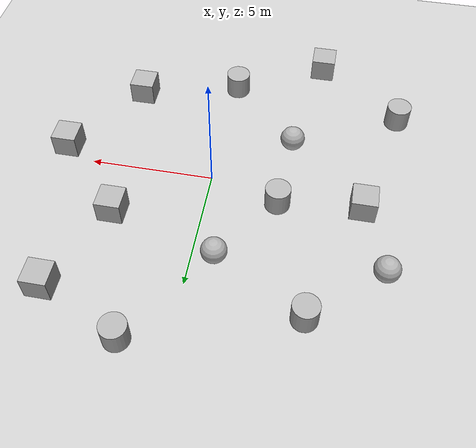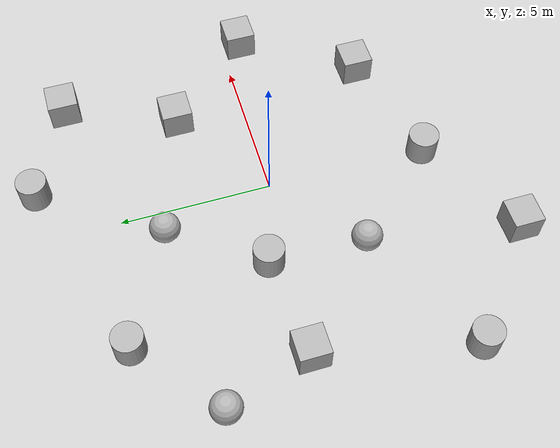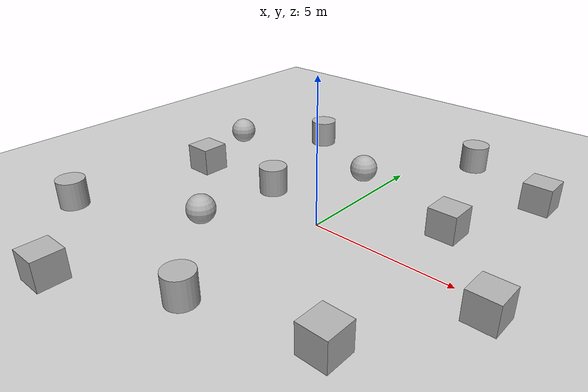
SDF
<sdf version='1.9'>
  <world name='my_world'>
    <physics name='1ms' type='ignored'>
      <max_step_size>0.001</max_step_size>
      <real_time_factor>1</real_time_factor>
      <real_time_update_rate>1000</real_time_update_rate>
    </physics>
    <plugin name='gz::sim::systems::Physics' filename='gz-sim-physics-system'/>
    <plugin name='gz::sim::systems::UserCommands' filename='gz-sim-user-commands-system'/>
    <plugin name='gz::sim::systems::SceneBroadcaster' filename='gz-sim-scene-broadcaster-system'/>
    <plugin name='gz::sim::systems::Imu' filename='gz-sim-imu-system'/>
    <plugin name='gz::sim::systems::Sensors' filename='gz-sim-sensors-system'>
      <render_engine>ogre2</render_engine>
    </plugin>
    <plugin name='gz::sim::systems::Contact' filename='gz-sim-contact-system'/>
    <gravity>0 0 -9.8</gravity>
    <magnetic_field>6e-06 2.3e-05 -4.2e-05</magnetic_field>
    <atmosphere type='adiabatic'/>
    <scene>
      <ambient>0.4 0.4 0.4 1</ambient>
      <background>0.7 0.7 0.7 1</background>
      <shadows>true</shadows>
    </scene>

    <!-- Ground Plane -->
    <model name='ground_plane'>
      <static>true</static>
      <link name='link'>
        <collision name='collision'>
          <geometry>
            <plane>
              <normal>0 0 1</normal>
              <size>100 100</size>
            </plane>
          </geometry>
          <surface>
            <friction>
              <ode>
                <mu>100</mu>
                <mu2>50</mu2>
              </ode>
            </friction>
            <bounce/>
            <contact/>
          </surface>
        </collision>
        <visual name='visual'>
          <cast_shadows>false</cast_shadows>
          <geometry>
            <plane>
              <normal>0 0 1</normal>
              <size>100 100</size>
            </plane>
          </geometry>
          <material>
            <ambient>0.8 0.8 0.8 1</ambient>
            <diffuse>0.8 0.8 0.8 1</diffuse>
            <specular>0.8 0.8 0.8 1</specular>
          </material>
        </visual>
        <pose>0 0 0 0 0 0</pose>
        <inertial>
          <pose>0 0 0 0 0 0</pose>
          <mass>1</mass>
          <inertia>
            <ixx>1</ixx><ixy>0</ixy><ixz>0</ixz>
            <iyy>1</iyy><iyz>0</iyz><izz>1</izz>
          </inertia>
        </inertial>
        <enable_wind>false</enable_wind>
      </link>
      <pose>0 0 0 0 0 0</pose>
      <self_collide>false</self_collide>
    </model>

    <!-- Robot: spawned via ros_gz_sim create node using robot_description topic -->

    <!-- Boxes -->
    <model name='box'>
      <pose>3.43782 2.34559 0.5 0 0 0</pose>
      <link name='box_link'>
        <inertial>
          <inertia><ixx>0.16666</ixx><ixy>0</ixy><ixz>0</ixz><iyy>0.16666</iyy><iyz>0</iyz><izz>0.16666</izz></inertia>
          <mass>1</mass><pose>0 0 0 0 0 0</pose>
        </inertial>
        <collision name='box_collision'>
          <geometry><box><size>1 1 1</size></box></geometry>
          <surface><friction><ode/></friction><bounce/><contact/></surface>
        </collision>
        <visual name='box_visual'>
          <geometry><box><size>1 1 1</size></box></geometry>
          <material><ambient>0.3 0.3 0.3 1</ambient><diffuse>0.7 0.7 0.7 1</diffuse><specular>1 1 1 1</specular></material>
        </visual>
        <pose>0 0 0 0 0 0</pose>
        <enable_wind>false</enable_wind>
      </link>
      <static>false</static>
      <self_collide>false</self_collide>
    </model>

    <model name='box_0'>
      <pose>3.92604 -4.27886 0.5 0 0 0</pose>
      <link name='box_link'>
        <inertial>
          <inertia><ixx>0.16666</ixx><ixy>0</ixy><ixz>0</ixz><iyy>0.16666</iyy><iyz>0</iyz><izz>0.16666</izz></inertia>
          <mass>1</mass><pose>0 0 0 0 0 0</pose>
        </inertial>
        <collision name='box_collision'>
          <geometry><box><size>1 1 1</size></box></geometry>
          <surface><friction><ode/></friction><bounce/><contact/></surface>
        </collision>
        <visual name='box_visual'>
          <geometry><box><size>1 1 1</size></box></geometry>
          <material><ambient>0.3 0.3 0.3 1</ambient><diffuse>0.7 0.7 0.7 1</diffuse><specular>1 1 1 1</specular></material>
        </visual>
        <pose>0 0 0 0 0 0</pose>
        <enable_wind>false</enable_wind>
      </link>
      <static>false</static>
      <self_collide>false</self_collide>
    </model>

    <model name='box_1'>
      <pose>-6.09958 0.537561 0.5 0 0 0</pose>
      <link name='box_link'>
        <inertial>
          <inertia><ixx>0.16666</ixx><ixy>0</ixy><ixz>0</ixz><iyy>0.16666</iyy><iyz>0</iyz><izz>0.16666</izz></inertia>
          <mass>1</mass><pose>0 0 0 0 0 0</pose>
        </inertial>
        <collision name='box_collision'>
          <geometry><box><size>1 1 1</size></box></geometry>
          <surface><friction><ode/></friction><bounce/><contact/></surface>
        </collision>
        <visual name='box_visual'>
          <geometry><box><size>1 1 1</size></box></geometry>
          <material><ambient>0.3 0.3 0.3 1</ambient><diffuse>0.7 0.7 0.7 1</diffuse><specular>1 1 1 1</specular></material>
        </visual>
        <pose>0 0 0 0 0 0</pose>
        <enable_wind>false</enable_wind>
      </link>
      <static>false</static>
      <self_collide>false</self_collide>
    </model>

    <model name='box_2'>
      <pose>6.22669 -0.634333 0.5 0 0 0</pose>
      <link name='box_link'>
        <inertial>
          <inertia><ixx>0.16666</ixx><ixy>0</ixy><ixz>0</ixz><iyy>0.16666</iyy><iyz>0</iyz><izz>0.16666</izz></inertia>
          <mass>1</mass><pose>0 0 0 0 0 0</pose>
        </inertial>
        <collision name='box_collision'>
          <geometry><box><size>1 1 1</size></box></geometry>
          <surface><friction><ode/></friction><bounce/><contact/></surface>
        </collision>
        <visual name='box_visual'>
          <geometry><box><size>1 1 1</size></box></geometry>
          <material><ambient>0.3 0.3 0.3 1</ambient><diffuse>0.7 0.7 0.7 1</diffuse><specular>1 1 1 1</specular></material>
        </visual>
        <pose>0 0 0 0 0 0</pose>
        <enable_wind>false</enable_wind>
      </link>
      <static>false</static>
      <self_collide>false</self_collide>
    </model>

    <model name='box_3'>
      <pose>4.94538 5.97896 0.5 0 0 0</pose>
      <link name='box_link'>
        <inertial>
          <inertia><ixx>0.16666</ixx><ixy>0</ixy><ixz>0</ixz><iyy>0.16666</iyy><iyz>0</iyz><izz>0.16666</izz></inertia>
          <mass>1</mass><pose>0 0 0 0 0 0</pose>
        </inertial>
        <collision name='box_collision'>
          <geometry><box><size>1 1 1</size></box></geometry>
          <surface><friction><ode/></friction><bounce/><contact/></surface>
        </collision>
        <visual name='box_visual'>
          <geometry><box><size>1 1 1</size></box></geometry>
          <material><ambient>0.3 0.3 0.3 1</ambient><diffuse>0.7 0.7 0.7 1</diffuse><specular>1 1 1 1</specular></material>
        </visual>
        <pose>0 0 0 0 0 0</pose>
        <enable_wind>false</enable_wind>
      </link>
      <static>false</static>
      <self_collide>false</self_collide>
    </model>

    <model name='box_4'>
      <pose>-3.78368 -7.24202 0.5 0 0 0</pose>
      <link name='box_link'>
        <inertial>
          <inertia><ixx>0.16666</ixx><ixy>0</ixy><ixz>0</ixz><iyy>0.16666</iyy><iyz>0</iyz><izz>0.16666</izz></inertia>
          <mass>1</mass><pose>0 0 0 0 0 0</pose>
        </inertial>
        <collision name='box_collision'>
          <geometry><box><size>1 1 1</size></box></geometry>
          <surface><friction><ode/></friction><bounce/><contact/></surface>
        </collision>
        <visual name='box_visual'>
          <geometry><box><size>1 1 1</size></box></geometry>
          <material><ambient>0.3 0.3 0.3 1</ambient><diffuse>0.7 0.7 0.7 1</diffuse><specular>1 1 1 1</specular></material>
        </visual>
        <pose>0 0 0 0 0 0</pose>
        <enable_wind>false</enable_wind>
      </link>
      <static>false</static>
      <self_collide>false</self_collide>
    </model>

    <!-- Cylinders -->
    <model name='cylinder'>
      <pose>-4.4174 5.61203 0.499999 0 0 0</pose>
      <link name='cylinder_link'>
        <inertial>
          <inertia><ixx>0.1458</ixx><ixy>0</ixy><ixz>0</ixz><iyy>0.1458</iyy><iyz>0</iyz><izz>0.125</izz></inertia>
          <mass>1</mass><pose>0 0 0 0 0 0</pose>
        </inertial>
        <collision name='cylinder_collision'>
          <geometry><cylinder><radius>0.5</radius><length>1</length></cylinder></geometry>
          <surface><friction><ode/></friction><bounce/><contact/></surface>
        </collision>
        <visual name='cylinder_visual'>
          <geometry><cylinder><radius>0.5</radius><length>1</length></cylinder></geometry>
          <material><ambient>0.3 0.3 0.3 1</ambient><diffuse>0.7 0.7 0.7 1</diffuse><specular>1 1 1 1</specular></material>
        </visual>
        <pose>0 0 0 0 0 0</pose>
        <enable_wind>false</enable_wind>
      </link>
      <static>false</static>
      <self_collide>false</self_collide>
    </model>

    <model name='cylinder_0'>
      <pose>1.74531 7.47799 0.499999 0 0 0</pose>
      <link name='cylinder_link'>
        <inertial>
          <inertia><ixx>0.1458</ixx><ixy>0</ixy><ixz>0</ixz><iyy>0.1458</iyy><iyz>0</iyz><izz>0.125</izz></inertia>
          <mass>1</mass><pose>0 0 0 0 0 0</pose>
        </inertial>
        <collision name='cylinder_collision'>
          <geometry><cylinder><radius>0.5</radius><length>1</length></cylinder></geometry>
          <surface><friction><ode/></friction><bounce/><contact/></surface>
        </collision>
        <visual name='cylinder_visual'>
          <geometry><cylinder><radius>0.5</radius><length>1</length></cylinder></geometry>
          <material><ambient>0.3 0.3 0.3 1</ambient><diffuse>0.7 0.7 0.7 1</diffuse><specular>1 1 1 1</specular></material>
        </visual>
        <pose>0 0 0 0 0 0</pose>
        <enable_wind>false</enable_wind>
      </link>
      <static>false</static>
      <self_collide>false</self_collide>
    </model>

    <model name='cylinder_1'>
      <pose>-0.132806 -5.3249 0.499999 0 0 0</pose>
      <link name='cylinder_link'>
        <inertial>
          <inertia><ixx>0.1458</ixx><ixy>0</ixy><ixz>0</ixz><iyy>0.1458</iyy><iyz>0</iyz><izz>0.125</izz></inertia>
          <mass>1</mass><pose>0 0 0 0 0 0</pose>
        </inertial>
        <collision name='cylinder_collision'>
          <geometry><cylinder><radius>0.5</radius><length>1</length></cylinder></geometry>
          <surface><friction><ode/></friction><bounce/><contact/></surface>
        </collision>
        <visual name='cylinder_visual'>
          <geometry><cylinder><radius>0.5</radius><length>1</length></cylinder></geometry>
          <material><ambient>0.3 0.3 0.3 1</ambient><diffuse>0.7 0.7 0.7 1</diffuse><specular>1 1 1 1</specular></material>
        </visual>
        <pose>0 0 0 0 0 0</pose>
        <enable_wind>false</enable_wind>
      </link>
      <static>false</static>
      <self_collide>false</self_collide>
    </model>

    <model name='cylinder_2'>
      <pose>-7.24042 -4.5203 0.499999 0 0 0</pose>
      <link name='cylinder_link'>
        <inertial>
          <inertia><ixx>0.1458</ixx><ixy>0</ixy><ixz>0</ixz><iyy>0.1458</iyy><iyz>0</iyz><izz>0.125</izz></inertia>
          <mass>1</mass><pose>0 0 0 0 0 0</pose>
        </inertial>
        <collision name='cylinder_collision'>
          <geometry><cylinder><radius>0.5</radius><length>1</length></cylinder></geometry>
          <surface><friction><ode/></friction><bounce/><contact/></surface>
        </collision>
        <visual name='cylinder_visual'>
          <geometry><cylinder><radius>0.5</radius><length>1</length></cylinder></geometry>
          <material><ambient>0.3 0.3 0.3 1</ambient><diffuse>0.7 0.7 0.7 1</diffuse><specular>1 1 1 1</specular></material>
        </visual>
        <pose>0 0 0 0 0 0</pose>
        <enable_wind>false</enable_wind>
      </link>
      <static>false</static>
      <self_collide>false</self_collide>
    </model>

    <model name='cylinder_3'>
      <pose>-2.78874 0.837419 0.499999 0 0 0</pose>
      <link name='cylinder_link'>
        <inertial>
          <inertia><ixx>0.1458</ixx><ixy>0</ixy><ixz>0</ixz><iyy>0.1458</iyy><iyz>0</iyz><izz>0.125</izz></inertia>
          <mass>1</mass><pose>0 0 0 0 0 0</pose>
        </inertial>
        <collision name='cylinder_collision'>
          <geometry><cylinder><radius>0.5</radius><length>1</length></cylinder></geometry>
          <surface><friction><ode/></friction><bounce/><contact/></surface>
        </collision>
        <visual name='cylinder_visual'>
          <geometry><cylinder><radius>0.5</radius><length>1</length></cylinder></geometry>
          <material><ambient>0.3 0.3 0.3 1</ambient><diffuse>0.7 0.7 0.7 1</diffuse><specular>1 1 1 1</specular></material>
        </visual>
        <pose>0 0 0 0 0 0</pose>
        <enable_wind>false</enable_wind>
      </link>
      <static>false</static>
      <self_collide>false</self_collide>
    </model>

    <!-- Spheres -->
    <model name='sphere'>
      <pose>-0.851795 3.70456 0.5 0 0 0</pose>
      <link name='sphere_link'>
        <inertial>
          <inertia><ixx>0.1</ixx><ixy>0</ixy><ixz>0</ixz><iyy>0.1</iyy><iyz>0</iyz><izz>0.1</izz></inertia>
          <mass>1</mass><pose>0 0 0 0 0 0</pose>
        </inertial>
        <collision name='sphere_collision'>
          <geometry><sphere><radius>0.5</radius></sphere></geometry>
          <surface><friction><ode/></friction><bounce/><contact/></surface>
        </collision>
        <visual name='sphere_visual'>
          <geometry><sphere><radius>0.5</radius></sphere></geometry>
          <material><ambient>0.3 0.3 0.3 1</ambient><diffuse>0.7 0.7 0.7 1</diffuse><specular>1 1 1 1</specular></material>
        </visual>
        <pose>0 0 0 0 0 0</pose>
        <enable_wind>false</enable_wind>
      </link>
      <static>false</static>
      <self_collide>false</self_collide>
    </model>

    <model name='sphere_0'>
      <pose>-2.96936 -2.33772 0.5 0 0 0</pose>
      <link name='sphere_link'>
        <inertial>
          <inertia><ixx>0.1</ixx><ixy>0</ixy><ixz>0</ixz><iyy>0.1</iyy><iyz>0</iyz><izz>0.1</izz></inertia>
          <mass>1</mass><pose>0 0 0 0 0 0</pose>
        </inertial>
        <collision name='sphere_collision'>
          <geometry><sphere><radius>0.5</radius></sphere></geometry>
          <surface><friction><ode/></friction><bounce/><contact/></surface>
        </collision>
        <visual name='sphere_visual'>
          <geometry><sphere><radius>0.5</radius></sphere></geometry>
          <material><ambient>0.3 0.3 0.3 1</ambient><diffuse>0.7 0.7 0.7 1</diffuse><specular>1 1 1 1</specular></material>
        </visual>
        <pose>0 0 0 0 0 0</pose>
        <enable_wind>false</enable_wind>
      </link>
      <static>false</static>
      <self_collide>false</self_collide>
    </model>

    <model name='sphere_1'>
      <pose>-7.10451 3.37197 0.5 0 0 0</pose>
      <link name='sphere_link'>
        <inertial>
          <inertia><ixx>0.1</ixx><ixy>0</ixy><ixz>0</ixz><iyy>0.1</iyy><iyz>0</iyz><izz>0.1</izz></inertia>
          <mass>1</mass><pose>0 0 0 0 0 0</pose>
        </inertial>
        <collision name='sphere_collision'>
          <geometry><sphere><radius>0.5</radius></sphere></geometry>
          <surface><friction><ode/></friction><bounce/><contact/></surface>
        </collision>
        <visual name='sphere_visual'>
          <geometry><sphere><radius>0.5</radius></sphere></geometry>
          <material><ambient>0.3 0.3 0.3 1</ambient><diffuse>0.7 0.7 0.7 1</diffuse><specular>1 1 1 1</specular></material>
        </visual>
        <pose>0 0 0 0 0 0</pose>
        <enable_wind>false</enable_wind>
      </link>
      <static>false</static>
      <self_collide>false</self_collide>
    </model>

    <!-- Sun Light -->
    <light name='sun' type='directional'>
      <pose>0 0 10 0 0 0</pose>
      <cast_shadows>true</cast_shadows>
      <intensity>1</intensity>
      <direction>-0.5 0.1 -0.9</direction>
      <diffuse>0.8 0.8 0.8 1</diffuse>
      <specular>0.2 0.2 0.2 1</specular>
      <attenuation>
        <range>1000</range>
        <linear>0.01</linear>
        <constant>0.9</constant>
        <quadratic>0.001</quadratic>
      </attenuation>
      <spot>
        <inner_angle>0</inner_angle>
        <outer_angle>0</outer_angle>
        <falloff>0</falloff>
      </spot>
    </light>

  </world>
</sdf>
